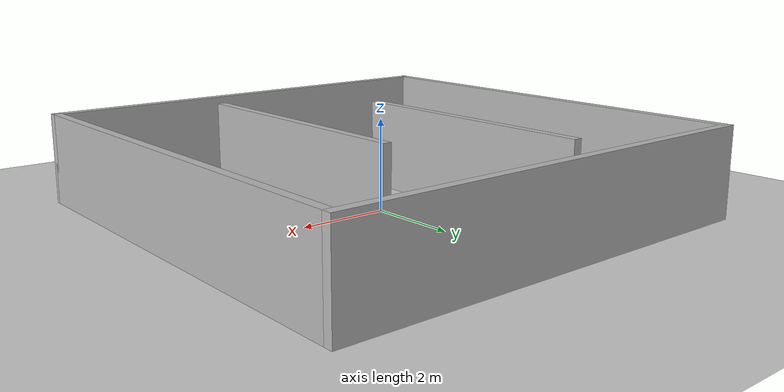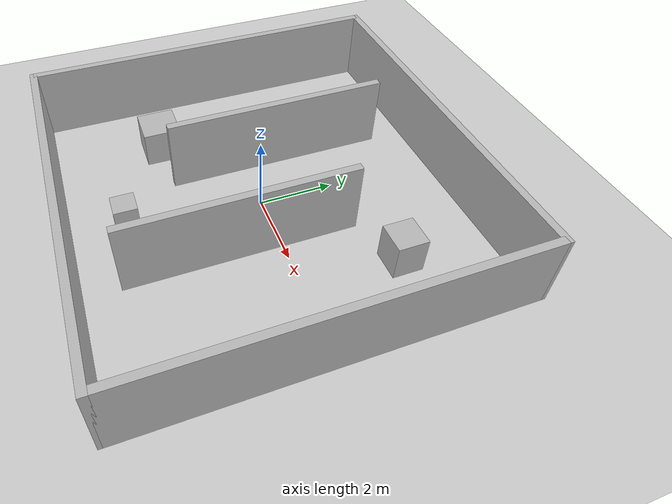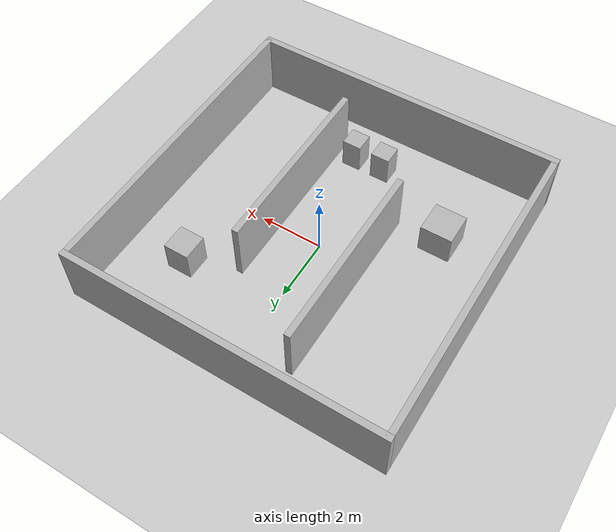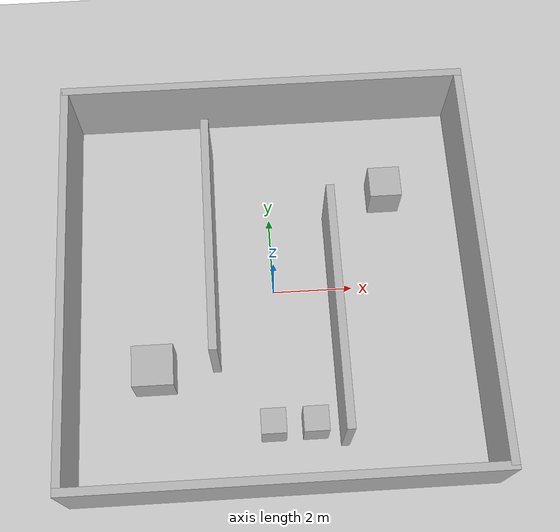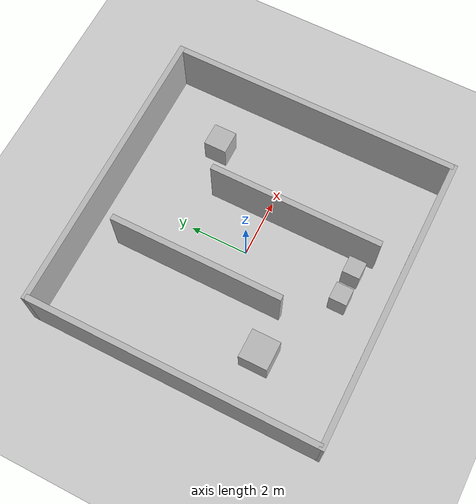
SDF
<?xml version="1.0" ?>
<sdf version="1.6">
  <world name="empty">
    <physics name="1ms" type="ignored">
      <max_step_size>0.001</max_step_size>
      <real_time_factor>1.0</real_time_factor>
    </physics>
    <plugin
      filename="gz-sim-physics-system"
      name="gz::sim::systems::Physics">
    </plugin>
    <plugin
      filename="gz-sim-user-commands-system"
      name="gz::sim::systems::UserCommands">
    </plugin>
    <plugin
      filename="gz-sim-scene-broadcaster-system"
      name="gz::sim::systems::SceneBroadcaster">
    </plugin>
    <plugin
      filename="gz-sim-contact-system"
      name="gz::sim::systems::Contact">
    </plugin>

    <plugin filename="gz-sim-sensors-system" name="gz::sim::systems::Sensors">
      <render_engine>ogre2</render_engine>
    </plugin>

    <!-- 2. 光源 -->
    <light type="directional" name="sun">
      <cast_shadows>true</cast_shadows>
      <pose>0 0 10 0 0 0</pose>
      <diffuse>0.8 0.8 0.8 1</diffuse>
      <specular>0.2 0.2 0.2 1</specular>
      <direction>-0.5 0.1 -0.9</direction>
    </light>

    <!-- 3. 地面 -->
        <model name="ground_plane">
          <static>true</static>
          <link name="link">
            <collision name="collision">
              <geometry><plane><normal>0 0 1</normal><size>20 20</size></plane></geometry>
            </collision>
            <visual name="visual">
              <geometry><plane><normal>0 0 1</normal><size>20 20</size></plane></geometry>
              <material>
                <ambient>0.8 0.8 0.8 1</ambient>
                <diffuse>0.8 0.8 0.8 1</diffuse>
              </material>
            </visual>
          </link>
        </model>

        <!-- 4. 外围框架墙 (10m x 10m 区域) -->
        <!-- 北墙 -->
        <model name="wall_north">
          <static>true</static>
          <pose>0 5.0 1.0 0 0 0</pose>
          <link name="link">
            <collision name="col"><geometry><box><size>10.2 0.2 2.0</size></box></geometry></collision>
            <visual name="vis"><geometry><box><size>10.2 0.2 2.0</size></box></geometry></visual>
          </link>
        </model>
        <!-- 南墙 -->
        <model name="wall_south">
          <static>true</static>
          <pose>0 -5.0 1.0 0 0 0</pose>
          <link name="link">
            <collision name="col"><geometry><box><size>10.2 0.2 2.0</size></box></geometry></collision>
            <visual name="vis"><geometry><box><size>10.2 0.2 2.0</size></box></geometry></visual>
          </link>
        </model>
        <!-- 东墙 -->
        <model name="wall_east">
          <static>true</static>
          <pose>5.0 0 1.0 0 0 0</pose>
          <link name="link">
            <collision name="col"><geometry><box><size>0.2 10.0 2.0</size></box></geometry></collision>
            <visual name="vis"><geometry><box><size>0.2 10.0 2.0</size></box></geometry></visual>
          </link>
        </model>
        <!-- 西墙 -->
        <model name="wall_west">
          <static>true</static>
          <pose>-5.0 0 1.0 0 0 0</pose>
          <link name="link">
            <collision name="col"><geometry><box><size>0.2 10.0 2.0</size></box></geometry></collision>
            <visual name="vis"><geometry><box><size>0.2 10.0 2.0</size></box></geometry></visual>
          </link>
        </model>

        <!-- 5. 内部导航障碍物 (构建通道与拐角) -->
        <!-- 中央分割墙（创造 U 型或 S 型路径） -->
        <model name="inner_wall_1">
          <static>true</static>
          <pose>-1.5 1.0 1.0 0 0 0</pose>
          <link name="link">
            <collision name="col"><geometry><box><size>0.2 6.0 2.0</size></box></geometry></collision>
            <visual name="vis"><geometry><box><size>0.2 6.0 2.0</size></box></geometry></visual>
          </link>
        </model>

        <model name="inner_wall_2">
          <static>true</static>
          <pose>1.5 -1.0 1.0 0 0 0</pose>
          <link name="link">
            <collision name="col"><geometry><box><size>0.2 6.0 2.0</size></box></geometry></collision>
            <visual name="vis"><geometry><box><size>0.2 6.0 2.0</size></box></geometry></visual>
          </link>
        </model>

        <!-- 散落的方块障碍物 (测试局部避障) -->
        <model name="obstacle_box_1">
          <static>true</static>
          <pose>-3.0 -2.0 0.5 0 0 0</pose>
          <link name="link">
            <collision name="col"><geometry><box><size>1.0 1.0 1.0</size></box></geometry></collision>
            <visual name="vis"><geometry><box><size>1.0 1.0 1.0</size></box></geometry></visual>
          </link>
        </model>

        <model name="obstacle_box_2">
          <static>true</static>
          <pose>3.0 2.5 0.5 0 0 0</pose>
          <link name="link">
            <collision name="col"><geometry><box><size>0.8 0.8 1.0</size></box></geometry></collision>
            <visual name="vis"><geometry><box><size>0.8 0.8 1.0</size></box></geometry></visual>
          </link>
        </model>

        <!-- 狭窄通道方块组 -->
        <model name="narrow_gate_left">
          <static>true</static>
          <pose>-0.2 -3.5 0.5 0 0 0</pose>
          <link name="link">
            <collision name="col"><geometry><box><size>0.6 0.6 1.0</size></box></geometry></collision>
            <visual name="vis"><geometry><box><size>0.6 0.6 1.0</size></box></geometry></visual>
          </link>
        </model>

        <model name="narrow_gate_right">
          <static>true</static>
          <pose>0.8 -3.5 0.5 0 0 0</pose>
          <link name="link">
            <collision name="col"><geometry><box><size>0.6 0.6 1.0</size></box></geometry></collision>
            <visual name="vis"><geometry><box><size>0.6 0.6 1.0</size></box></geometry></visual>
          </link>
        </model>
  </world>
</sdf>
